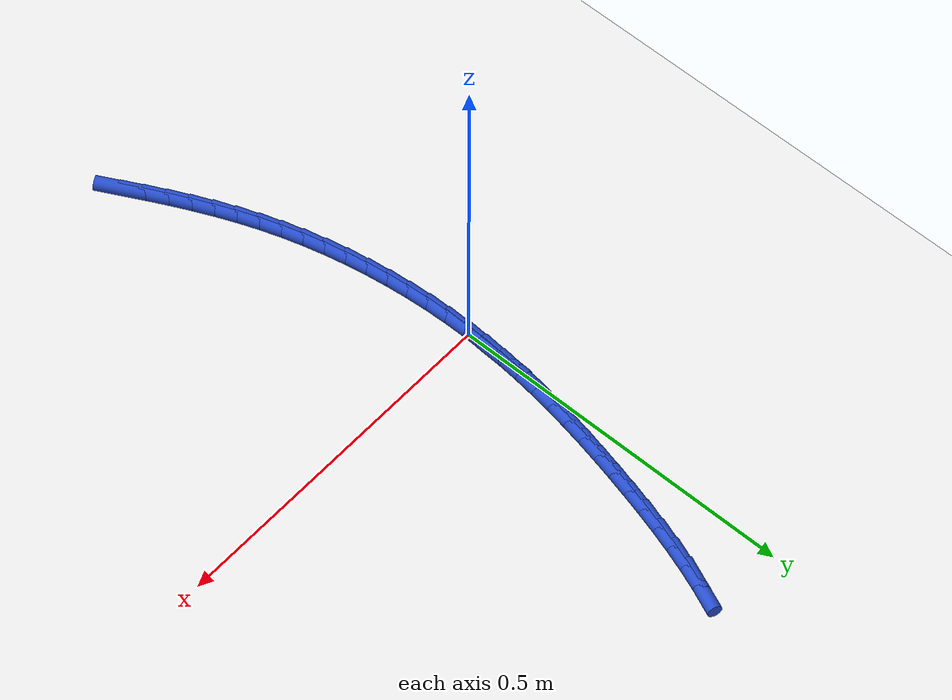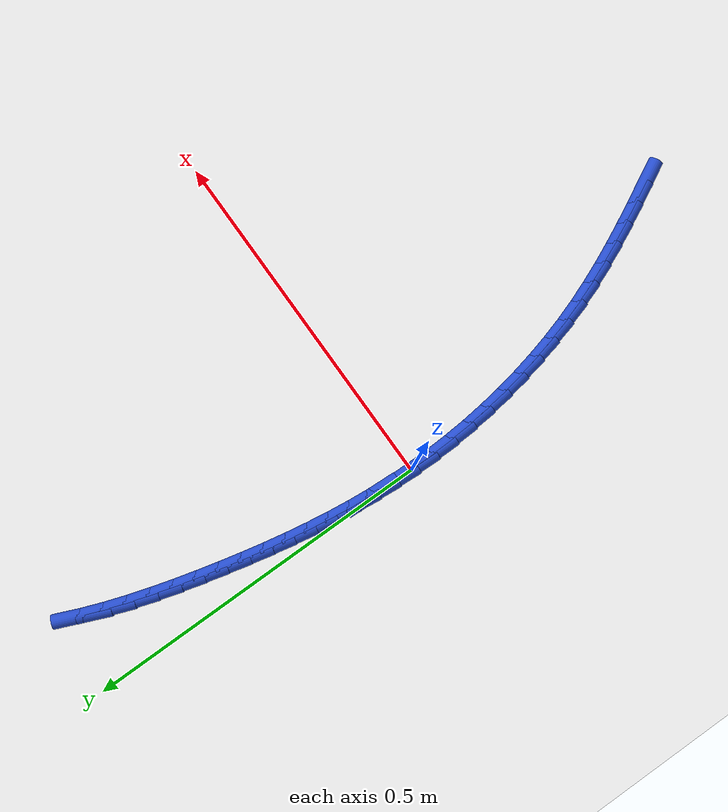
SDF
<sdf version="1.6">
 <world name="default">
  <model name="ground_plane">
   <static>1</static>
   <link name="link">
    <collision name="collision">
     <geometry><plane><normal>0 0 1</normal><size>100 100</size></plane></geometry>
     <surface><friction><ode><mu>100</mu><mu2>50</mu2></ode></friction></surface>
    </collision>
    <visual name="visual">
     <cast_shadows>0</cast_shadows>
     <geometry><plane><normal>0 0 1</normal><size>100 100</size></plane></geometry>
     <material>
      <script><uri>file://media/materials/scripts/gazebo.material</uri><name>Gazebo/WhiteGlow</name></script>
     </material>
    </visual>
   </link>
  </model>
  <model name="line">
   <link name="link_0">
    <pose>-3.469446951953614e-18 -6.938893903907228e-18 0.01 0 1.57 1.5374632616049688</pose>
    <collision name="collision">
     <geometry><cylinder><radius>0.01</radius><length>0.08</length></cylinder></geometry>
    </collision>
    <visual name="visual">
     <material>
      <script><name>Gazebo/Blue</name><uri>file://media/materials/scripts/gazebo.material</uri></script>
     </material>
     <geometry><cylinder><radius>0.01</radius><length>0.08</length></cylinder></geometry>
    </visual>
   </link>
   <link name="link_1">
    <pose>0.0010424125092274408 0.03126104371721876 0.01 0 1.57 1.5046778550741806</pose>
    <collision name="collision">
     <geometry><cylinder><radius>0.01</radius><length>0.08</length></cylinder></geometry>
    </collision>
    <visual name="visual">
     <material>
      <script><name>Gazebo/Blue</name><uri>file://media/materials/scripts/gazebo.material</uri></script>
     </material>
     <geometry><cylinder><radius>0.01</radius><length>0.08</length></cylinder></geometry>
    </visual>
   </link>
   <link name="link_2">
    <pose>0.0031026062292826813 0.062374749781334705 0.01 0 1.57 1.473939460340135</pose>
    <collision name="collision">
     <geometry><cylinder><radius>0.01</radius><length>0.08</length></cylinder></geometry>
    </collision>
    <visual name="visual">
     <material>
      <script><name>Gazebo/Blue</name><uri>file://media/materials/scripts/gazebo.material</uri></script>
     </material>
     <geometry><cylinder><radius>0.01</radius><length>0.08</length></cylinder></geometry>
    </visual>
   </link>
   <link name="link_3">
    <pose>0.0061145369325686615 0.09337416527451323 0.01 0 1.57 1.445395270978295</pose>
    <collision name="collision">
     <geometry><cylinder><radius>0.01</radius><length>0.08</length></cylinder></geometry>
    </collision>
    <visual name="visual">
     <material>
      <script><name>Gazebo/Blue</name><uri>file://media/materials/scripts/gazebo.material</uri></script>
     </material>
     <geometry><cylinder><radius>0.01</radius><length>0.08</length></cylinder></geometry>
    </visual>
   </link>
   <link name="link_4">
    <pose>0.010012160391488337 0.12429233727891978 0.01 0 1.57 1.419158370432345</pose>
    <collision name="collision">
     <geometry><cylinder><radius>0.01</radius><length>0.08</length></cylinder></geometry>
    </collision>
    <visual name="visual">
     <material>
      <script><name>Gazebo/Blue</name><uri>file://media/materials/scripts/gazebo.material</uri></script>
     </material>
     <geometry><cylinder><radius>0.01</radius><length>0.08</length></cylinder></geometry>
    </visual>
   </link>
   <link name="link_5">
    <pose>0.014729432378444648 0.15516231287671972 0.01 0 1.57 1.3953099632550863</pose>
    <collision name="collision">
     <geometry><cylinder><radius>0.01</radius><length>0.08</length></cylinder></geometry>
    </collision>
    <visual name="visual">
     <material>
      <script><name>Gazebo/Blue</name><uri>file://media/materials/scripts/gazebo.material</uri></script>
     </material>
     <geometry><cylinder><radius>0.01</radius><length>0.08</length></cylinder></geometry>
    </visual>
   </link>
   <link name="link_6">
    <pose>0.020200308665840556 0.18601713915007853 0.01 0 1.57 1.373902518697268</pose>
    <collision name="collision">
     <geometry><cylinder><radius>0.01</radius><length>0.08</length></cylinder></geometry>
    </collision>
    <visual name="visual">
     <material>
      <script><name>Gazebo/Blue</name><uri>file://media/materials/scripts/gazebo.material</uri></script>
     </material>
     <geometry><cylinder><radius>0.01</radius><length>0.08</length></cylinder></geometry>
    </visual>
   </link>
   <link name="link_7">
    <pose>0.02635874502607901 0.2168898631811616 0.01 0 1.57 1.3549634290930286</pose>
    <collision name="collision">
     <geometry><cylinder><radius>0.01</radius><length>0.08</length></cylinder></geometry>
    </collision>
    <visual name="visual">
     <material>
      <script><name>Gazebo/Blue</name><uri>file://media/materials/scripts/gazebo.material</uri></script>
     </material>
     <geometry><cylinder><radius>0.01</radius><length>0.08</length></cylinder></geometry>
    </visual>
   </link>
   <link name="link_8">
    <pose>0.03313869723156295 0.2478135320521343 0.01 0 1.57 1.338498839523467</pose>
    <collision name="collision">
     <geometry><cylinder><radius>0.01</radius><length>0.08</length></cylinder></geometry>
    </collision>
    <visual name="visual">
     <material>
      <script><name>Gazebo/Blue</name><uri>file://media/materials/scripts/gazebo.material</uri></script>
     </material>
     <geometry><cylinder><radius>0.01</radius><length>0.08</length></cylinder></geometry>
    </visual>
   </link>
   <link name="link_9">
    <pose>0.04047412105469532 0.2788211928451621 0.01 0 1.57 1.32437012627559</pose>
    <collision name="collision">
     <geometry><cylinder><radius>0.01</radius><length>0.08</length></cylinder></geometry>
    </collision>
    <visual name="visual">
     <material>
      <script><name>Gazebo/Blue</name><uri>file://media/materials/scripts/gazebo.material</uri></script>
     </material>
     <geometry><cylinder><radius>0.01</radius><length>0.08</length></cylinder></geometry>
    </visual>
   </link>
   <link name="link_10">
    <pose>0.04830228594703557 0.30994232471106964 0.01 0 1.57 1.309440053932046</pose>
    <collision name="collision">
     <geometry><cylinder><radius>0.01</radius><length>0.08</length></cylinder></geometry>
    </collision>
    <visual name="visual">
     <material>
      <script><name>Gazebo/Blue</name><uri>file://media/materials/scripts/gazebo.material</uri></script>
     </material>
     <geometry><cylinder><radius>0.01</radius><length>0.08</length></cylinder></geometry>
    </visual>
   </link>
   <link name="link_11">
    <pose>0.05664133395840119 0.3411193290045787 0.01 0 1.57 1.2904129745757267</pose>
    <collision name="collision">
     <geometry><cylinder><radius>0.01</radius><length>0.08</length></cylinder></geometry>
    </collision>
    <visual name="visual">
     <material>
      <script><name>Gazebo/Blue</name><uri>file://media/materials/scripts/gazebo.material</uri></script>
     </material>
     <geometry><cylinder><radius>0.01</radius><length>0.08</length></cylinder></geometry>
    </visual>
   </link>
   <link name="link_12">
    <pose>0.06559295540037482 0.37220464832232225 0.01 0 1.57 1.2669774140957082</pose>
    <collision name="collision">
     <geometry><cylinder><radius>0.01</radius><length>0.08</length></cylinder></geometry>
    </collision>
    <visual name="visual">
     <material>
      <script><name>Gazebo/Blue</name><uri>file://media/materials/scripts/gazebo.material</uri></script>
     </material>
     <geometry><cylinder><radius>0.01</radius><length>0.08</length></cylinder></geometry>
    </visual>
   </link>
   <link name="link_13">
    <pose>0.07526268957413251 0.40304658094582246 0.01 0 1.57 1.2388990652985616</pose>
    <collision name="collision">
     <geometry><cylinder><radius>0.01</radius><length>0.08</length></cylinder></geometry>
    </collision>
    <visual name="visual">
     <material>
      <script><name>Gazebo/Blue</name><uri>file://media/materials/scripts/gazebo.material</uri></script>
     </material>
     <geometry><cylinder><radius>0.01</radius><length>0.08</length></cylinder></geometry>
    </visual>
   </link>
   <link name="link_14">
    <pose>0.0857560757808503 0.4334934251566013 0.01 0 1.57 1.2058807477188203</pose>
    <collision name="collision">
     <geometry><cylinder><radius>0.01</radius><length>0.08</length></cylinder></geometry>
    </collision>
    <visual name="visual">
     <material>
      <script><name>Gazebo/Blue</name><uri>file://media/materials/scripts/gazebo.material</uri></script>
     </material>
     <geometry><cylinder><radius>0.01</radius><length>0.08</length></cylinder></geometry>
    </visual>
   </link>
   <link name="link_15">
    <pose>0.0971786533217042 0.46339347923618107 0.01 0 1.57 1.1675735135778058</pose>
    <collision name="collision">
     <geometry><cylinder><radius>0.01</radius><length>0.08</length></cylinder></geometry>
    </collision>
    <visual name="visual">
     <material>
      <script><name>Gazebo/Blue</name><uri>file://media/materials/scripts/gazebo.material</uri></script>
     </material>
     <geometry><cylinder><radius>0.01</radius><length>0.08</length></cylinder></geometry>
    </visual>
   </link>
   <link name="link_194">
    <pose>0.12710224329261877 -0.47806621923199905 0.01 0 1.57 -1.0857718111334083</pose>
    <collision name="collision">
     <geometry><cylinder><radius>0.01</radius><length>0.08</length></cylinder></geometry>
    </collision>
    <visual name="visual">
     <material>
      <script><name>Gazebo/Blue</name><uri>file://media/materials/scripts/gazebo.material</uri></script>
     </material>
     <geometry><cylinder><radius>0.01</radius><length>0.08</length></cylinder></geometry>
    </visual>
   </link>
   <link name="link_195">
    <pose>0.11244117674399162 -0.4502470969004829 0.01 0 1.57 -1.101298730460862</pose>
    <collision name="collision">
     <geometry><cylinder><radius>0.01</radius><length>0.08</length></cylinder></geometry>
    </collision>
    <visual name="visual">
     <material>
      <script><name>Gazebo/Blue</name><uri>file://media/materials/scripts/gazebo.material</uri></script>
     </material>
     <geometry><cylinder><radius>0.01</radius><length>0.08</length></cylinder></geometry>
    </visual>
   </link>
   <link name="link_196">
    <pose>0.09832825997266129 -0.4224292959630365 0.01 0 1.57 -1.1215132438261295</pose>
    <collision name="collision">
     <geometry><cylinder><radius>0.01</radius><length>0.08</length></cylinder></geometry>
    </collision>
    <visual name="visual">
     <material>
      <script><name>Gazebo/Blue</name><uri>file://media/materials/scripts/gazebo.material</uri></script>
     </material>
     <geometry><cylinder><radius>0.01</radius><length>0.08</length></cylinder></geometry>
    </visual>
   </link>
   <link name="link_197">
    <pose>0.08486421206641098 -0.3945055028941171 0.01 0 1.57 -1.1463839937842442</pose>
    <collision name="collision">
     <geometry><cylinder><radius>0.01</radius><length>0.08</length></cylinder></geometry>
    </collision>
    <visual name="visual">
     <material>
      <script><name>Gazebo/Blue</name><uri>file://media/materials/scripts/gazebo.material</uri></script>
     </material>
     <geometry><cylinder><radius>0.01</radius><length>0.08</length></cylinder></geometry>
    </visual>
   </link>
   <link name="link_198">
    <pose>0.07214975211302296 -0.3663684041681801 0.01 0 1.57 -1.1758025057546244</pose>
    <collision name="collision">
     <geometry><cylinder><radius>0.01</radius><length>0.08</length></cylinder></geometry>
    </collision>
    <visual name="visual">
     <material>
      <script><name>Gazebo/Blue</name><uri>file://media/materials/scripts/gazebo.material</uri></script>
     </material>
     <geometry><cylinder><radius>0.01</radius><length>0.08</length></cylinder></geometry>
    </visual>
   </link>
   <link name="link_199">
    <pose>0.06028559920027986 -0.3379106862596817 0.01 0 1.57 -1.2095692473896213</pose>
    <collision name="collision">
     <geometry><cylinder><radius>0.01</radius><length>0.08</length></cylinder></geometry>
    </collision>
    <visual name="visual">
     <material>
      <script><name>Gazebo/Blue</name><uri>file://media/materials/scripts/gazebo.material</uri></script>
     </material>
     <geometry><cylinder><radius>0.01</radius><length>0.08</length></cylinder></geometry>
    </visual>
   </link>
   <link name="link_200">
    <pose>0.04937247241596425 -0.3090250356430779 0.01 0 1.57 -1.2472686062381246</pose>
    <collision name="collision">
     <geometry><cylinder><radius>0.01</radius><length>0.08</length></cylinder></geometry>
    </collision>
    <visual name="visual">
     <material>
      <script><name>Gazebo/Blue</name><uri>file://media/materials/scripts/gazebo.material</uri></script>
     </material>
     <geometry><cylinder><radius>0.01</radius><length>0.08</length></cylinder></geometry>
    </visual>
   </link>
   <link name="link_201">
    <pose>0.03950879135832307 -0.2796083570312279 0.01 0 1.57 -1.2861528345337543</pose>
    <collision name="collision">
     <geometry><cylinder><radius>0.01</radius><length>0.08</length></cylinder></geometry>
    </collision>
    <visual name="visual">
     <material>
      <script><name>Gazebo/Blue</name><uri>file://media/materials/scripts/gazebo.material</uri></script>
     </material>
     <geometry><cylinder><radius>0.01</radius><length>0.08</length></cylinder></geometry>
    </visual>
   </link>
   <link name="link_202">
    <pose>0.030743061654938657 -0.24964911851426835 0.01 0 1.57 -1.32391876918072</pose>
    <collision name="collision">
     <geometry><cylinder><radius>0.01</radius><length>0.08</length></cylinder></geometry>
    </collision>
    <visual name="visual">
     <material>
      <script><name>Gazebo/Blue</name><uri>file://media/materials/scripts/gazebo.material</uri></script>
     </material>
     <geometry><cylinder><radius>0.01</radius><length>0.08</length></cylinder></geometry>
    </visual>
   </link>
   <link name="link_203">
    <pose>0.023075473475816198 -0.21922441920911673 0.01 0 1.57 -1.3606585103636066</pose>
    <collision name="collision">
     <geometry><cylinder><radius>0.01</radius><length>0.08</length></cylinder></geometry>
    </collision>
    <visual name="visual">
     <material>
      <script><name>Gazebo/Blue</name><uri>file://media/materials/scripts/gazebo.material</uri></script>
     </material>
     <geometry><cylinder><radius>0.01</radius><length>0.08</length></cylinder></geometry>
    </visual>
   </link>
   <link name="link_204">
    <pose>0.016504237310225857 -0.18841498980620514 0.01 0 1.57 -1.3965584003442801</pose>
    <collision name="collision">
     <geometry><cylinder><radius>0.01</radius><length>0.08</length></cylinder></geometry>
    </collision>
    <visual name="visual">
     <material>
      <script><name>Gazebo/Blue</name><uri>file://media/materials/scripts/gazebo.material</uri></script>
     </material>
     <geometry><cylinder><radius>0.01</radius><length>0.08</length></cylinder></geometry>
    </visual>
   </link>
   <link name="link_205">
    <pose>0.011027563647438015 -0.15730156099596596 0.01 0 1.57 -1.4318016979303</pose>
    <collision name="collision">
     <geometry><cylinder><radius>0.01</radius><length>0.08</length></cylinder></geometry>
    </collision>
    <visual name="visual">
     <material>
      <script><name>Gazebo/Blue</name><uri>file://media/materials/scripts/gazebo.material</uri></script>
     </material>
     <geometry><cylinder><radius>0.01</radius><length>0.08</length></cylinder></geometry>
    </visual>
   </link>
   <link name="link_206">
    <pose>0.006643662976723069 -0.125964863468832 0.01 0 1.57 -1.466569379965233</pose>
    <collision name="collision">
     <geometry><cylinder><radius>0.01</radius><length>0.08</length></cylinder></geometry>
    </collision>
    <visual name="visual">
     <material>
      <script><name>Gazebo/Blue</name><uri>file://media/materials/scripts/gazebo.material</uri></script>
     </material>
     <geometry><cylinder><radius>0.01</radius><length>0.08</length></cylinder></geometry>
    </visual>
   </link>
   <link name="link_207">
    <pose>0.0033507457873514046 -0.09448562791523579 0.01 0 1.57 -1.5010412525542811</pose>
    <collision name="collision">
     <geometry><cylinder><radius>0.01</radius><length>0.08</length></cylinder></geometry>
    </collision>
    <visual name="visual">
     <material>
      <script><name>Gazebo/Blue</name><uri>file://media/materials/scripts/gazebo.material</uri></script>
     </material>
     <geometry><cylinder><radius>0.01</radius><length>0.08</length></cylinder></geometry>
    </visual>
   </link>
   <link name="link_208">
    <pose>0.0011470225685934082 -0.06294458502560993 0.01 0 1.57 -1.53539729737471</pose>
    <collision name="collision">
     <geometry><cylinder><radius>0.01</radius><length>0.08</length></cylinder></geometry>
    </collision>
    <visual name="visual">
     <material>
      <script><name>Gazebo/Blue</name><uri>file://media/materials/scripts/gazebo.material</uri></script>
     </material>
     <geometry><cylinder><radius>0.01</radius><length>0.08</length></cylinder></geometry>
    </visual>
   </link>
   <link name="link_209">
    <pose>3.0703809719459865e-05 -0.03142246549038637 0.01 0 1.57 -1.56981919786919</pose>
    <collision name="collision">
     <geometry><cylinder><radius>0.01</radius><length>0.08</length></cylinder></geometry>
    </collision>
    <visual name="visual">
     <material>
      <script><name>Gazebo/Blue</name><uri>file://media/materials/scripts/gazebo.material</uri></script>
     </material>
     <geometry><cylinder><radius>0.01</radius><length>0.08</length></cylinder></geometry>
    </visual>
   </link>
   <link name="link_210">
    <pose>-1.6479873021779667e-17 1.0408340855860843e-16 0.01 0 1.57 1.5371006508937806</pose>
    <collision name="collision">
     <geometry><cylinder><radius>0.01</radius><length>0.08</length></cylinder></geometry>
    </collision>
    <visual name="visual">
     <material>
      <script><name>Gazebo/Blue</name><uri>file://media/materials/scripts/gazebo.material</uri></script>
     </material>
     <geometry><cylinder><radius>0.01</radius><length>0.08</length></cylinder></geometry>
    </visual>
   </link>
   <link name="link_211">
    <pose>0.0010531216287053332 0.031242080755119084 0.01 0 1.57 1.5019867641183973</pose>
    <collision name="collision">
     <geometry><cylinder><radius>0.01</radius><length>0.08</length></cylinder></geometry>
    </collision>
    <visual name="visual">
     <material>
      <script><name>Gazebo/Blue</name><uri>file://media/materials/scripts/gazebo.material</uri></script>
     </material>
     <geometry><cylinder><radius>0.01</radius><length>0.08</length></cylinder></geometry>
    </visual>
   </link>
   <link name="link_212">
    <pose>0.003188279185106028 0.062223046084538644 0.01 0 1.57 1.5196015764706035</pose>
    <collision name="collision">
     <geometry><cylinder><radius>0.01</radius><length>0.08</length></cylinder></geometry>
    </collision>
    <visual name="visual">
     <material>
      <script><name>Gazebo/Blue</name><uri>file://media/materials/scripts/gazebo.material</uri></script>
     </material>
     <geometry><cylinder><radius>0.01</radius><length>0.08</length></cylinder></geometry>
    </visual>
   </link>
  </model>
 </world>
</sdf>
